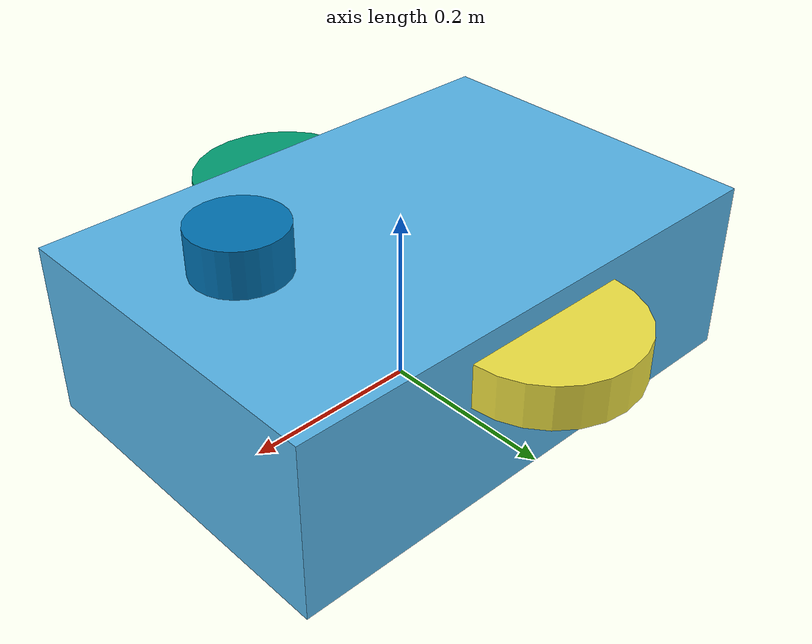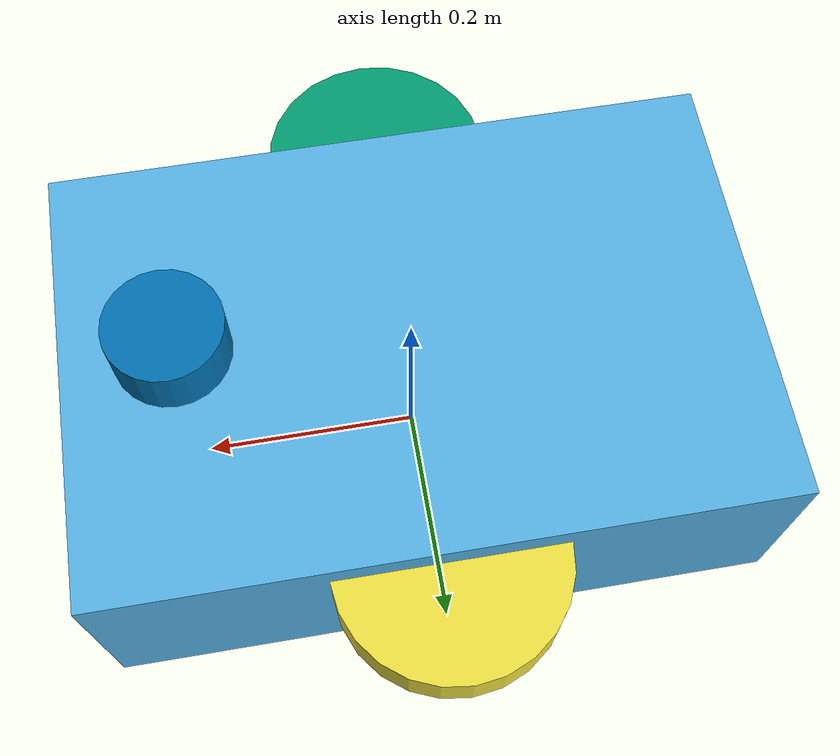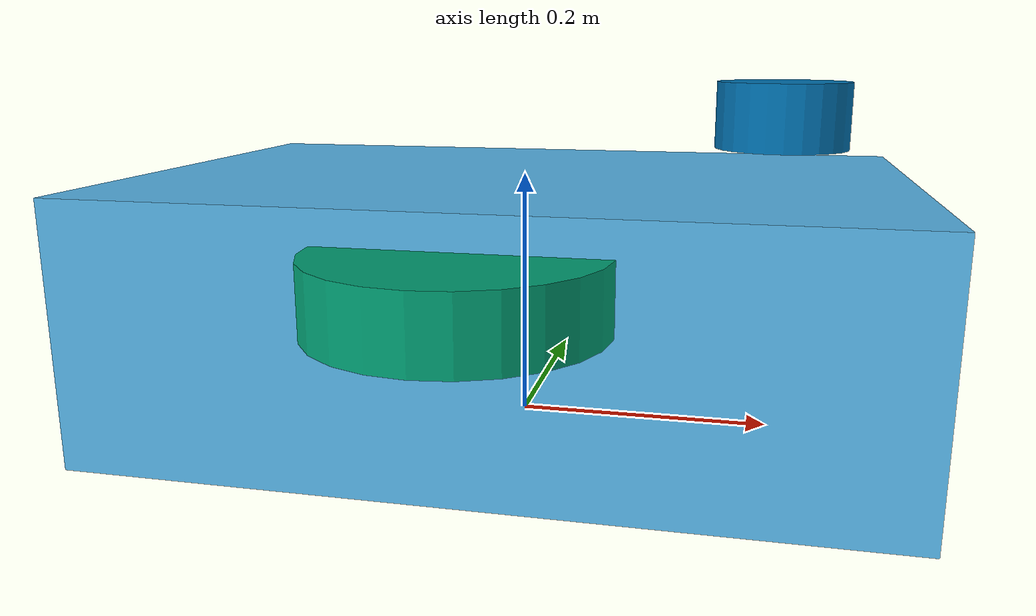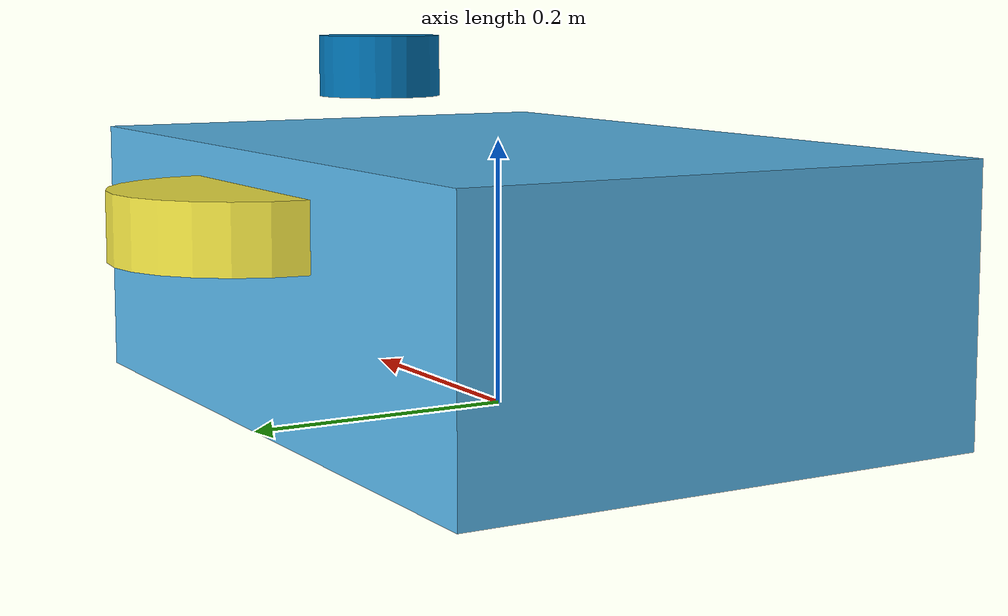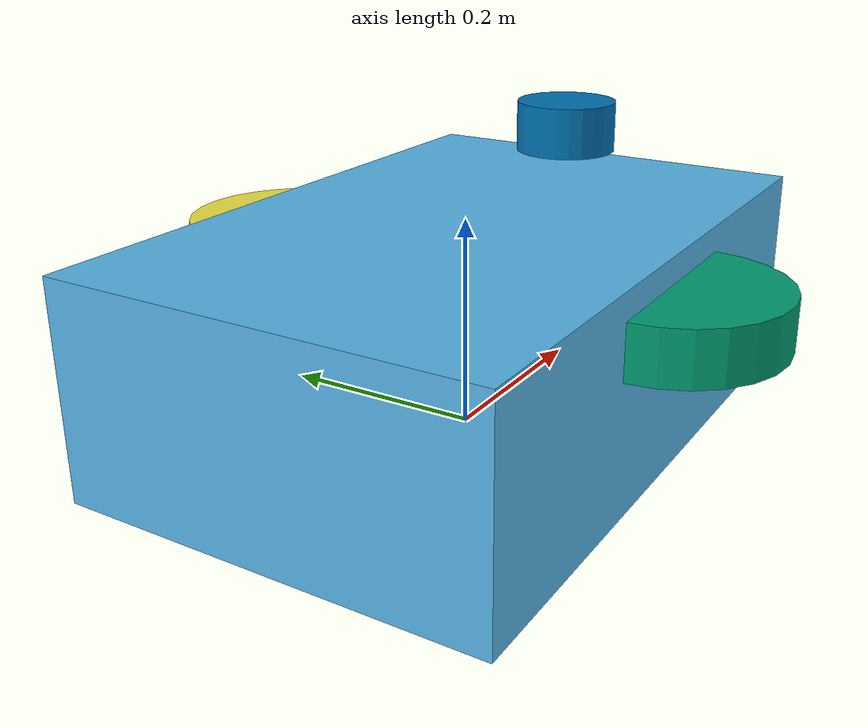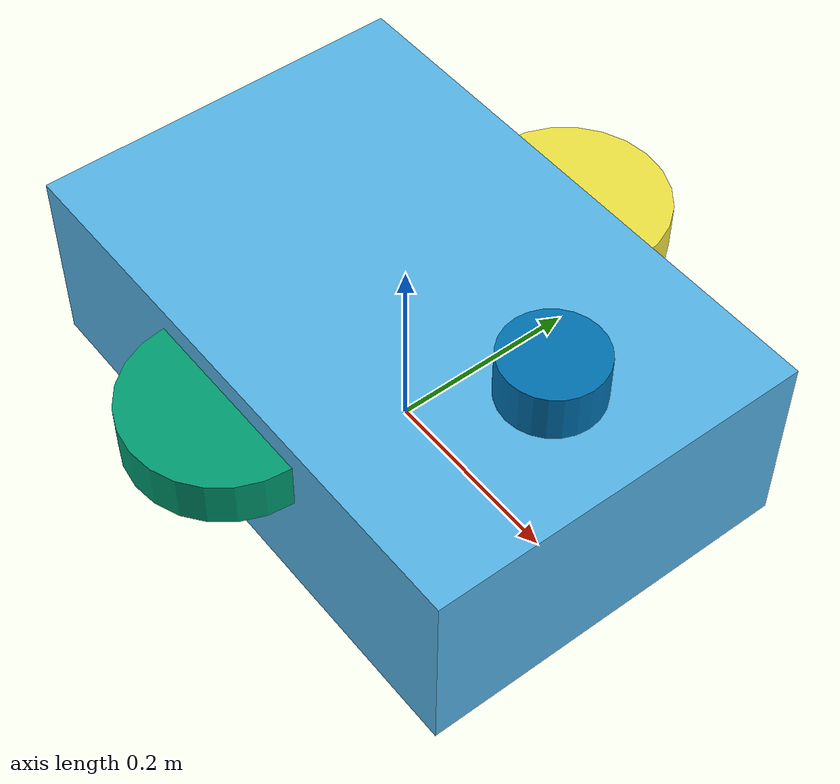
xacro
<?xml version="1.0"?>
<robot xmlns:xacro="http://www.ros.org/wiki/xacro" name="outdoor_rover">

  <!-- ================= BASE FRAMES ================= -->

  <!-- Ground-projected frame (no roll/pitch) -->
  <link name="base_footprint"/>

  <!-- Main robot body -->
  <link name="base_link">
    <visual>
      <geometry>
        <box size="0.6 0.4 0.2"/>
      </geometry>
    </visual>
    <collision>
      <geometry>
        <box size="0.6 0.4 0.2"/>
      </geometry>
    </collision>
    <inertial>
      <mass value="10.0"/>
      <origin xyz="0 0 0"/>
      <inertia ixx="0.1" ixy="0" ixz="0"
               iyy="0.1" iyz="0"
               izz="0.1"/>
    </inertial>
  </link>

  <!-- base_link sits above ground -->
  <joint name="base_joint" type="fixed">
    <parent link="base_footprint"/>
    <child link="base_link"/>
    <origin xyz="0 0 0.1"/>
  </joint>

  <!-- ================= WHEELS ================= -->

  <link name="wheel_left">
    <visual>
      <geometry>
        <cylinder radius="0.1" length="0.05"/>
      </geometry>
    </visual>
    <collision>
      <geometry>
        <cylinder radius="0.1" length="0.05"/>
      </geometry>
    </collision>
  </link>

  <link name="wheel_right">
    <visual>
      <geometry>
        <cylinder radius="0.1" length="0.05"/>
      </geometry>
    </visual>
    <collision>
      <geometry>
        <cylinder radius="0.1" length="0.05"/>
      </geometry>
    </collision>
  </link>

  <!-- Continuous joints allow rotation -->
  <joint name="wheel_left_joint" type="continuous">
    <parent link="base_link"/>
    <child link="wheel_left"/>
    <origin xyz="0 -0.2 0.05"/>
    <axis xyz="0 1 0"/>
  </joint>

  <joint name="wheel_right_joint" type="continuous">
    <parent link="base_link"/>
    <child link="wheel_right"/>
    <origin xyz="0 0.2 0.05"/>
    <axis xyz="0 1 0"/>
  </joint>

  <!-- ================= SENSORS ================= -->

  <!-- LiDAR -->
  <link name="lidar_link">
    <visual>
      <geometry>
        <cylinder radius="0.05" length="0.05"/>
      </geometry>
    </visual>
  </link>

  <joint name="lidar_joint" type="fixed">
    <parent link="base_link"/>
    <child link="lidar_link"/>
    <origin xyz="0.2 0 0.15"/>
  </joint>

  <!-- IMU -->
  <link name="imu_link"/>
  <joint name="imu_joint" type="fixed">
    <parent link="base_link"/>
    <child link="imu_link"/>
    <origin xyz="0 0 0.1"/>
  </joint>

  <!-- GPS -->
  <link name="gps_link"/>
  <joint name="gps_joint" type="fixed">
    <parent link="base_link"/>
    <child link="gps_link"/>
    <origin xyz="0 0 0.25"/>
  </joint>

  <!-- ================= GAZEBO PLUGINS ================= -->

  <!-- Differential drive controller -->
  <gazebo>
    <plugin name="diff_drive" filename="libgazebo_ros_diff_drive.so">
      <left_joint>wheel_left_joint</left_joint>
      <right_joint>wheel_right_joint</right_joint>
      <wheel_separation>0.4</wheel_separation>
      <wheel_radius>0.1</wheel_radius>

      <cmd_vel_topic>/cmd_vel</cmd_vel_topic>
      <odom_topic>/odom</odom_topic>

      <publish_odom>true</publish_odom>
      <publish_tf>true</publish_tf>
      <publish_cmd>true</publish_cmd>
      <publish_wheel_tf>false</publish_wheel_tf>

      <odometry_frame>odom</odometry_frame>
      <robot_base_frame>base_footprint</robot_base_frame>
    </plugin>
  </gazebo>

  <!-- LiDAR plugin -->
  <gazebo reference="lidar_link">
    <sensor type="ray" name="lidar">
      <update_rate>10</update_rate>
      <ray>
        <scan>
          <horizontal>
            <samples>360</samples>
            <min_angle>-3.14159</min_angle>
            <max_angle>3.14159</max_angle>
          </horizontal>
        </scan>
        <range>
          <min>0.2</min>
          <max>10.0</max>
        </range>
      </ray>
      <plugin name="lidar_plugin" filename="libgazebo_ros_ray_sensor.so">
        <topicName>/scan</topicName>
        <frameName>lidar_link</frameName>
      </plugin>
    </sensor>
  </gazebo>

  <!-- IMU plugin -->
  <gazebo reference="imu_link">
    <sensor type="imu" name="imu">
      <plugin name="imu_plugin" filename="libgazebo_ros_imu_sensor.so">
        <topicName>/imu/data</topicName>
        <frameName>imu_link</frameName>
      </plugin>
    </sensor>
  </gazebo>

  <!-- GPS plugin -->
  <gazebo reference="gps_link">
    <sensor type="gps" name="gps">
      <plugin name="gps_plugin" filename="libgazebo_ros_gps_sensor.so">
        <topicName>/gps/fix</topicName>
        <frameName>gps_link</frameName>
      </plugin>
    </sensor>
  </gazebo>

</robot>
